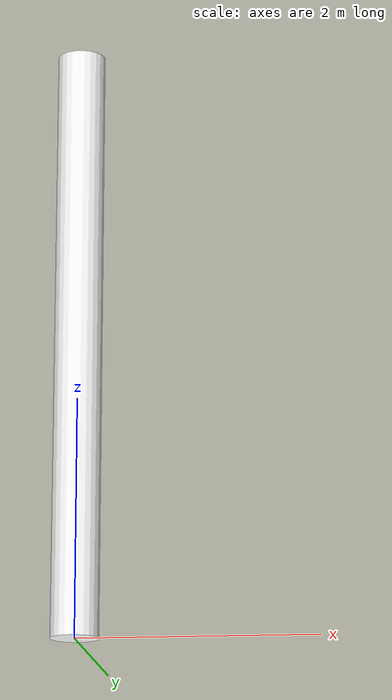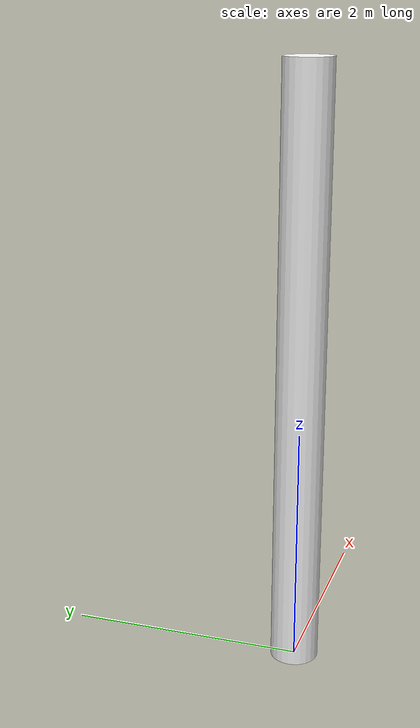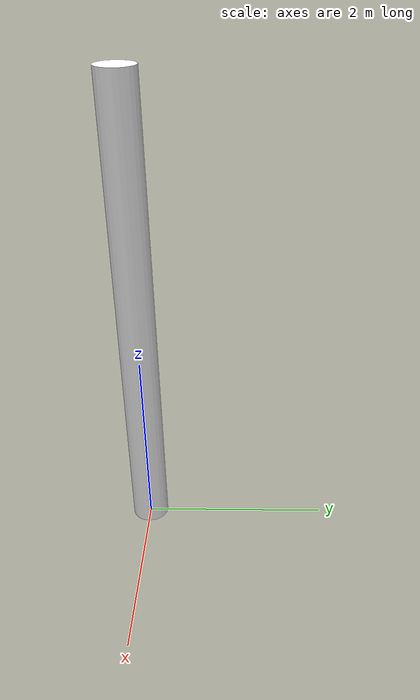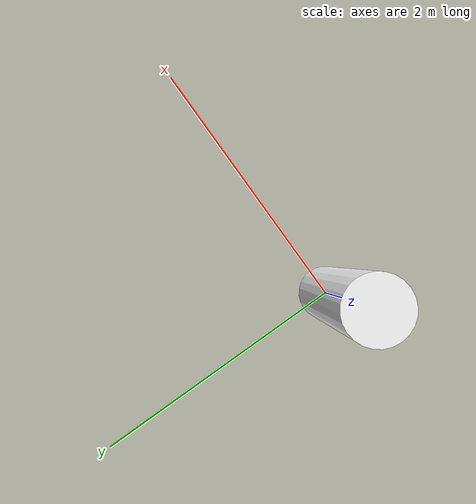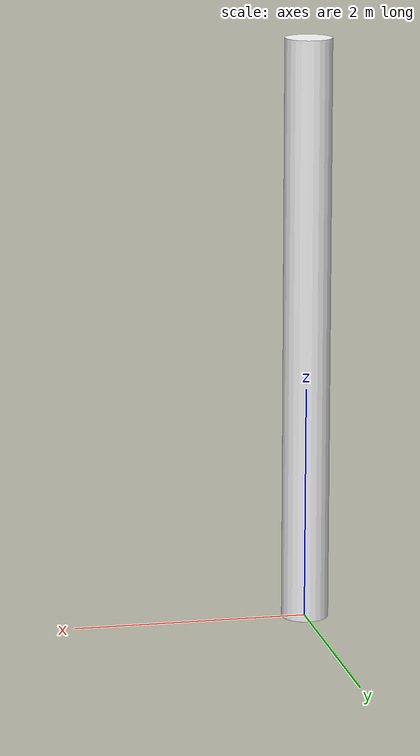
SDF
<?xml version="1.0" ?>
<sdf version="1.6">
  <model name="underwater_spotlight">
    <static>true</static>
    <!-- 模型整体抬至 z=长度/2，使底部落在 z=0 上方 -->
    <pose>0 0 2.5 0 0 0</pose>

    <link name="spotlight_link">
      <visual name="spotlight_visual">
        <geometry>
          <cylinder>
            <radius>0.2</radius>
            <length>5.0</length>
          </cylinder>
        </geometry>
        <material>
          <!-- 提高环境和漫反射，显得更亮 -->
          <ambient>0.8 0.8 0.8 1</ambient>
          <diffuse>1 1 1 1</diffuse>
          <specular>0.9 0.9 0.9 1</specular>
          <!-- 关键：自发光，数值越高越“发亮”；这里给接近白的发光 -->
          <emissive>1 1 1 1</emissive>
        </material>
      </visual>
      <!-- 无 collision，纯可视 -->
    </link>

    <!-- 分离的聚光灯 -->
    <light name="spotlight_light" type="spot">
      <!-- 放在圆柱顶部附近，沿 +Z 指向 -->
      <pose>0 0 5.2 0 0 0</pose>
      <diffuse>1 1 1 1</diffuse>
      <specular>0.3 0.3 0.3 1</specular>
      <attenuation>
        <!-- 增加照明范围与强度感知 -->
        <range>30</range>
        <constant>0.2</constant>
        <linear>0.01</linear>
        <quadratic>0.001</quadratic>
      </attenuation>
      <direction>0 0 1</direction>
      <spot>
        <inner_angle>0.2</inner_angle>
        <outer_angle>0.7</outer_angle>
        <falloff>0.7</falloff>
      </spot>
      <cast_shadows>true</cast_shadows>
    </light>

  </model>
</sdf>
